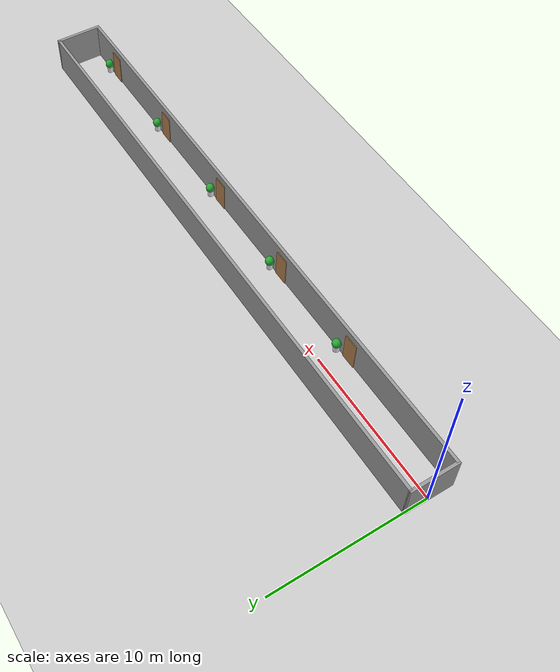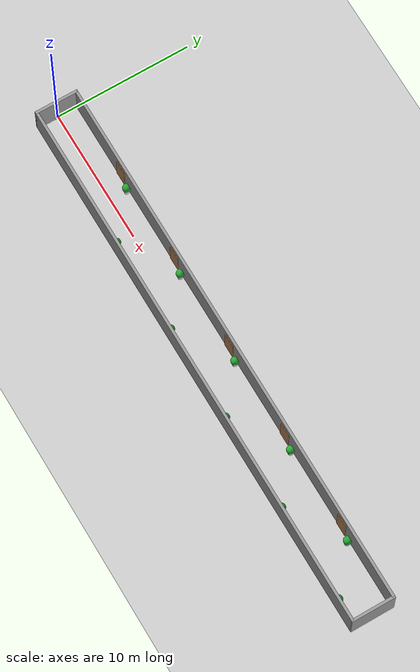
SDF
<?xml version="1.0" ?>
<sdf version="1.7">
  <world name="staggered_closed_corridor">

    <include><uri>model://sun</uri></include>
    <include><uri>model://ground_plane</uri></include>

    <!-- KHUNG HÀNH LANG KÍN (Dài 40m x Rộng 3m) -->
    <model name="corridor_walls">
      <static>true</static>
      <link name="walls_link">
        <collision name="left_wall"><pose>20 1.5 1.25 0 0 0</pose><geometry><box><size>40 0.2 2.5</size></box></geometry></collision>
        <visual name="left_wall_v"><pose>20 1.5 1.25 0 0 0</pose><geometry><box><size>40 0.2 2.5</size></box></geometry>
          <material><script><uri>file://media/materials/scripts/gazebo.material</uri><name>Gazebo/Grey</name></script></material></visual>

        <collision name="right_wall"><pose>20 -1.5 1.25 0 0 0</pose><geometry><box><size>40 0.2 2.5</size></box></geometry></collision>
        <visual name="right_wall_v"><pose>20 -1.5 1.25 0 0 0</pose><geometry><box><size>40 0.2 2.5</size></box></geometry>
          <material><script><uri>file://media/materials/scripts/gazebo.material</uri><name>Gazebo/Grey</name></script></material></visual>

        <collision name="start_wall"><pose>0 0 1.25 0 0 0</pose><geometry><box><size>0.2 3.2 2.5</size></box></geometry></collision>
        <visual name="start_wall_v"><pose>0 0 1.25 0 0 0</pose><geometry><box><size>0.2 3.2 2.5</size></box></geometry>
          <material><script><uri>file://media/materials/scripts/gazebo.material</uri><name>Gazebo/Grey</name></script></material></visual>

        <collision name="end_wall"><pose>40 0 1.25 0 0 0</pose><geometry><box><size>0.2 3.2 2.5</size></box></geometry></collision>
        <visual name="end_wall_v"><pose>40 0 1.25 0 0 0</pose><geometry><box><size>0.2 3.2 2.5</size></box></geometry>
          <material><script><uri>file://media/materials/scripts/gazebo.material</uri><name>Gazebo/Grey</name></script></material></visual>
      </link>
    </model>

    <!-- CÁC CỤM BÊN TRÁI (Bắt đầu từ 6m, mỗi cụm cách nhau 7m) -->
    <!-- Các mốc: 6m, 13m, 20m, 27m, 34m -->
    <model name="left_items">
      <static>true</static>

      <!-- Cụm 1 -->
      <link name="l_door_1"><pose>6 1.4 1.0 0 0 0</pose><collision name="c"><geometry><box><size>1.0 0.1 2.0</size></box></geometry></collision><visual name="v"><geometry><box><size>1.0 0.1 2.0</size></box></geometry><material><script><uri>file://media/materials/scripts/gazebo.material</uri><name>Gazebo/Wood</name></script></material></visual></link>
      <link name="l_pot_1"><pose>7 1.25 0.25 0 0 0</pose><collision name="c"><geometry><cylinder><radius>0.2</radius><length>0.5</length></cylinder></geometry></collision><visual name="pot"><geometry><cylinder><radius>0.2</radius><length>0.5</length></cylinder></geometry><material><script><uri>file://media/materials/scripts/gazebo.material</uri><name>Gazebo/White</name></script></material></visual><visual name="plant"><pose>0 0 0.4 0 0 0</pose><geometry><sphere><radius>0.3</radius></sphere></geometry><material><script><uri>file://media/materials/scripts/gazebo.material</uri><name>Gazebo/Green</name></script></material></visual></link>

      <!-- Cụm 2 -->
      <link name="l_door_2"><pose>13 1.4 1.0 0 0 0</pose><collision name="c"><geometry><box><size>1.0 0.1 2.0</size></box></geometry></collision><visual name="v"><geometry><box><size>1.0 0.1 2.0</size></box></geometry><material><script><uri>file://media/materials/scripts/gazebo.material</uri><name>Gazebo/Wood</name></script></material></visual></link>
      <link name="l_pot_2"><pose>14 1.25 0.25 0 0 0</pose><collision name="c"><geometry><cylinder><radius>0.2</radius><length>0.5</length></cylinder></geometry></collision><visual name="pot"><geometry><cylinder><radius>0.2</radius><length>0.5</length></cylinder></geometry><material><script><uri>file://media/materials/scripts/gazebo.material</uri><name>Gazebo/White</name></script></material></visual><visual name="plant"><pose>0 0 0.4 0 0 0</pose><geometry><sphere><radius>0.3</radius></sphere></geometry><material><script><uri>file://media/materials/scripts/gazebo.material</uri><name>Gazebo/Green</name></script></material></visual></link>

      <!-- Cụm 3 -->
      <link name="l_door_3"><pose>20 1.4 1.0 0 0 0</pose><collision name="c"><geometry><box><size>1.0 0.1 2.0</size></box></geometry></collision><visual name="v"><geometry><box><size>1.0 0.1 2.0</size></box></geometry><material><script><uri>file://media/materials/scripts/gazebo.material</uri><name>Gazebo/Wood</name></script></material></visual></link>
      <link name="l_pot_3"><pose>21 1.25 0.25 0 0 0</pose><collision name="c"><geometry><cylinder><radius>0.2</radius><length>0.5</length></cylinder></geometry></collision><visual name="pot"><geometry><cylinder><radius>0.2</radius><length>0.5</length></cylinder></geometry><material><script><uri>file://media/materials/scripts/gazebo.material</uri><name>Gazebo/White</name></script></material></visual><visual name="plant"><pose>0 0 0.4 0 0 0</pose><geometry><sphere><radius>0.3</radius></sphere></geometry><material><script><uri>file://media/materials/scripts/gazebo.material</uri><name>Gazebo/Green</name></script></material></visual></link>

      <!-- Cụm 4 -->
      <link name="l_door_4"><pose>27 1.4 1.0 0 0 0</pose><collision name="c"><geometry><box><size>1.0 0.1 2.0</size></box></geometry></collision><visual name="v"><geometry><box><size>1.0 0.1 2.0</size></box></geometry><material><script><uri>file://media/materials/scripts/gazebo.material</uri><name>Gazebo/Wood</name></script></material></visual></link>
      <link name="l_pot_4"><pose>28 1.25 0.25 0 0 0</pose><collision name="c"><geometry><cylinder><radius>0.2</radius><length>0.5</length></cylinder></geometry></collision><visual name="pot"><geometry><cylinder><radius>0.2</radius><length>0.5</length></cylinder></geometry><material><script><uri>file://media/materials/scripts/gazebo.material</uri><name>Gazebo/White</name></script></material></visual><visual name="plant"><pose>0 0 0.4 0 0 0</pose><geometry><sphere><radius>0.3</radius></sphere></geometry><material><script><uri>file://media/materials/scripts/gazebo.material</uri><name>Gazebo/Green</name></script></material></visual></link>

      <!-- Cụm 5 -->
      <link name="l_door_5"><pose>34 1.4 1.0 0 0 0</pose><collision name="c"><geometry><box><size>1.0 0.1 2.0</size></box></geometry></collision><visual name="v"><geometry><box><size>1.0 0.1 2.0</size></box></geometry><material><script><uri>file://media/materials/scripts/gazebo.material</uri><name>Gazebo/Wood</name></script></material></visual></link>
      <link name="l_pot_5"><pose>35 1.25 0.25 0 0 0</pose><collision name="c"><geometry><cylinder><radius>0.2</radius><length>0.5</length></cylinder></geometry></collision><visual name="pot"><geometry><cylinder><radius>0.2</radius><length>0.5</length></cylinder></geometry><material><script><uri>file://media/materials/scripts/gazebo.material</uri><name>Gazebo/White</name></script></material></visual><visual name="plant"><pose>0 0 0.4 0 0 0</pose><geometry><sphere><radius>0.3</radius></sphere></geometry><material><script><uri>file://media/materials/scripts/gazebo.material</uri><name>Gazebo/Green</name></script></material></visual></link>
    </model>

    <!-- CÁC CỤM BÊN PHẢI (Bắt đầu từ 9m, mỗi cụm cách nhau 7m) -->
    <!-- Các mốc: 9m, 16m, 23m, 30m, 37m -->
    <model name="right_items">
      <static>true</static>

      <!-- Cụm 1 -->
      <link name="r_door_1"><pose>9 -1.4 1.0 0 0 0</pose><collision name="c"><geometry><box><size>1.0 0.1 2.0</size></box></geometry></collision><visual name="v"><geometry><box><size>1.0 0.1 2.0</size></box></geometry><material><script><uri>file://media/materials/scripts/gazebo.material</uri><name>Gazebo/Wood</name></script></material></visual></link>
      <link name="r_pot_1"><pose>10 -1.25 0.25 0 0 0</pose><collision name="c"><geometry><cylinder><radius>0.2</radius><length>0.5</length></cylinder></geometry></collision><visual name="pot"><geometry><cylinder><radius>0.2</radius><length>0.5</length></cylinder></geometry><material><script><uri>file://media/materials/scripts/gazebo.material</uri><name>Gazebo/White</name></script></material></visual><visual name="plant"><pose>0 0 0.4 0 0 0</pose><geometry><sphere><radius>0.3</radius></sphere></geometry><material><script><uri>file://media/materials/scripts/gazebo.material</uri><name>Gazebo/Green</name></script></material></visual></link>

      <!-- Cụm 2 -->
      <link name="r_door_2"><pose>16 -1.4 1.0 0 0 0</pose><collision name="c"><geometry><box><size>1.0 0.1 2.0</size></box></geometry></collision><visual name="v"><geometry><box><size>1.0 0.1 2.0</size></box></geometry><material><script><uri>file://media/materials/scripts/gazebo.material</uri><name>Gazebo/Wood</name></script></material></visual></link>
      <link name="r_pot_2"><pose>17 -1.25 0.25 0 0 0</pose><collision name="c"><geometry><cylinder><radius>0.2</radius><length>0.5</length></cylinder></geometry></collision><visual name="pot"><geometry><cylinder><radius>0.2</radius><length>0.5</length></cylinder></geometry><material><script><uri>file://media/materials/scripts/gazebo.material</uri><name>Gazebo/White</name></script></material></visual><visual name="plant"><pose>0 0 0.4 0 0 0</pose><geometry><sphere><radius>0.3</radius></sphere></geometry><material><script><uri>file://media/materials/scripts/gazebo.material</uri><name>Gazebo/Green</name></script></material></visual></link>

      <!-- Cụm 3 -->
      <link name="r_door_3"><pose>23 -1.4 1.0 0 0 0</pose><collision name="c"><geometry><box><size>1.0 0.1 2.0</size></box></geometry></collision><visual name="v"><geometry><box><size>1.0 0.1 2.0</size></box></geometry><material><script><uri>file://media/materials/scripts/gazebo.material</uri><name>Gazebo/Wood</name></script></material></visual></link>
      <link name="r_pot_3"><pose>24 -1.25 0.25 0 0 0</pose><collision name="c"><geometry><cylinder><radius>0.2</radius><length>0.5</length></cylinder></geometry></collision><visual name="pot"><geometry><cylinder><radius>0.2</radius><length>0.5</length></cylinder></geometry><material><script><uri>file://media/materials/scripts/gazebo.material</uri><name>Gazebo/White</name></script></material></visual><visual name="plant"><pose>0 0 0.4 0 0 0</pose><geometry><sphere><radius>0.3</radius></sphere></geometry><material><script><uri>file://media/materials/scripts/gazebo.material</uri><name>Gazebo/Green</name></script></material></visual></link>

      <!-- Cụm 4 -->
      <link name="r_door_4"><pose>30 -1.4 1.0 0 0 0</pose><collision name="c"><geometry><box><size>1.0 0.1 2.0</size></box></geometry></collision><visual name="v"><geometry><box><size>1.0 0.1 2.0</size></box></geometry><material><script><uri>file://media/materials/scripts/gazebo.material</uri><name>Gazebo/Wood</name></script></material></visual></link>
      <link name="r_pot_4"><pose>31 -1.25 0.25 0 0 0</pose><collision name="c"><geometry><cylinder><radius>0.2</radius><length>0.5</length></cylinder></geometry></collision><visual name="pot"><geometry><cylinder><radius>0.2</radius><length>0.5</length></cylinder></geometry><material><script><uri>file://media/materials/scripts/gazebo.material</uri><name>Gazebo/White</name></script></material></visual><visual name="plant"><pose>0 0 0.4 0 0 0</pose><geometry><sphere><radius>0.3</radius></sphere></geometry><material><script><uri>file://media/materials/scripts/gazebo.material</uri><name>Gazebo/Green</name></script></material></visual></link>

      <!-- Cụm 5 -->
      <link name="r_door_5"><pose>37 -1.4 1.0 0 0 0</pose><collision name="c"><geometry><box><size>1.0 0.1 2.0</size></box></geometry></collision><visual name="v"><geometry><box><size>1.0 0.1 2.0</size></box></geometry><material><script><uri>file://media/materials/scripts/gazebo.material</uri><name>Gazebo/Wood</name></script></material></visual></link>
      <link name="r_pot_5"><pose>38 -1.25 0.25 0 0 0</pose><collision name="c"><geometry><cylinder><radius>0.2</radius><length>0.5</length></cylinder></geometry></collision><visual name="pot"><geometry><cylinder><radius>0.2</radius><length>0.5</length></cylinder></geometry><material><script><uri>file://media/materials/scripts/gazebo.material</uri><name>Gazebo/White</name></script></material></visual><visual name="plant"><pose>0 0 0.4 0 0 0</pose><geometry><sphere><radius>0.3</radius></sphere></geometry><material><script><uri>file://media/materials/scripts/gazebo.material</uri><name>Gazebo/Green</name></script></material></visual></link>
    </model>

  </world>
</sdf>
